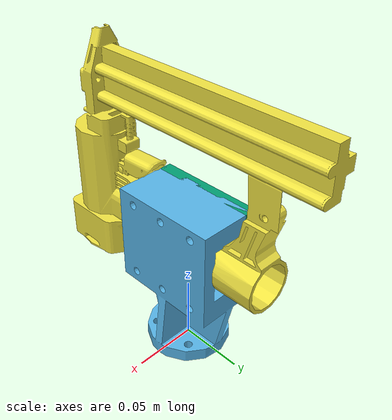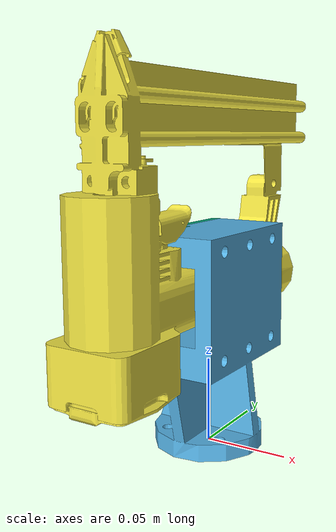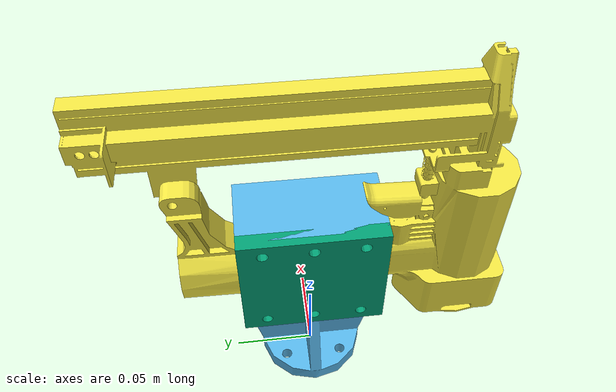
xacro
<?xml version="1.0"?>
<robot name="ee_and_nailer"
       xmlns:xacro="http://ros.org/wiki/xacro">

  <!-- Variable for the scale used when importing STL -->
  <xacro:property name="stl_scale" value="0.0254" />
  <xacro:property name="ee_base_stl_path" value="package://hydra/models/ee_and_nailer/meshes/gripper_nailer_base.stl" />
  <xacro:property name="ee_cover_stl_path" value="package://hydra/models/ee_and_nailer/meshes/gripper_nailer_cover.stl" />
  <xacro:property name="nailer_stl_path" value="package://hydra/models/ee_and_nailer/meshes/nailer.stl" />

  <!-- Phantom link for center of gripper -->
  <link name="ee_center" >
    <inertial>
      <mass value="0.01"/>
      <inertia ixx="0.0001" ixy="0.0" ixz="0.0" iyy="0.0001" iyz="0.0" izz="0.0001"/>
    </inertial>
  </link>

  <!-- EE to hold nailer -->
  <link name="ee_base" >
    <visual>
      <origin xyz="0 0 0" rpy="0 0 0" />
      <geometry>
	<mesh filename="${ee_base_stl_path}" scale="${stl_scale} ${stl_scale} ${stl_scale}" />
      </geometry>
    </visual>
    <collision>
      <origin xyz="0 0 0" rpy="0 0 0" />
      <geometry>
	<mesh filename="${ee_base_stl_path}" scale="${stl_scale} ${stl_scale} ${stl_scale}" />
      </geometry>
    </collision>
    <inertial>
      <mass value="0.1" />
      <inertia ixx="0.01" ixy="0.0" ixz="0.0" iyy="0.02" iyz="0.0" izz="0.02" />
    </inertial>
  </link>

  <link name="ee_cover" >
    <visual>
      <origin xyz="0 0 0" rpy="0 0 0" />
      <geometry>
	<mesh filename="${ee_cover_stl_path}" scale="${stl_scale} ${stl_scale} ${stl_scale}" />
      </geometry>
    </visual>
    <collision>
      <origin xyz="0 0 0" rpy="0 0 0" />
      <geometry>
	<mesh filename="${ee_cover_stl_path}" scale="${stl_scale} ${stl_scale} ${stl_scale}" />
      </geometry>
    </collision>
    <inertial>
      <mass value="0.1" />
      <inertia ixx="0.01" ixy="0.0" ixz="0.0" iyy="0.02" iyz="0.0" izz="0.02" />
    </inertial>
  </link>

  <link name="nailer" >
    <visual>
      <origin xyz="0 0 0" rpy="0 0 0" />
      <geometry>
	<mesh filename="${nailer_stl_path}" scale="${stl_scale} ${stl_scale} ${stl_scale}" />
      </geometry>
    </visual>
    <inertial>
      <mass value="0.1" />
      <inertia ixx="0.01" ixy="0.0" ixz="0.0" iyy="0.02" iyz="0.0" izz="0.02" />
    </inertial>
  </link>

  <!-- Fixed joints -->
  <joint name="ee_base_joint" type="fixed">
    <origin xyz="0 0 0" rpy="0 0 0" />
    <parent link="ee_center" />
    <child link="ee_base" />
  </joint>

  <joint name="ee_cover_joint" type="fixed">
    <origin xyz="-0.022 0 0.053" rpy="0 0 ${pi/2}" />
    <parent link="ee_center" />
    <child link="ee_cover" />
  </joint>

  <joint name="nailer_joint" type="fixed">
    <origin xyz="0.0 -0.09 0.085" rpy="0 ${-pi/2} ${pi}" />
    <parent link="ee_center" />
    <child link="nailer" />
  </joint>

</robot>
